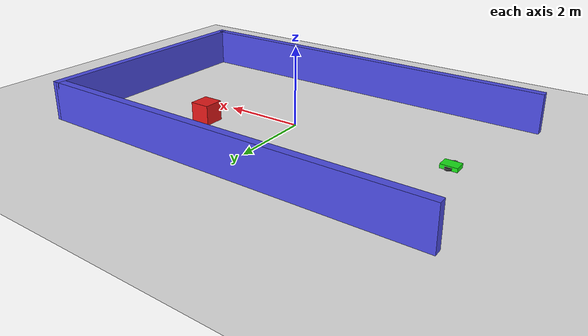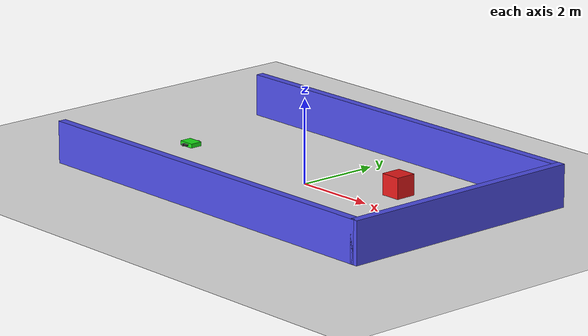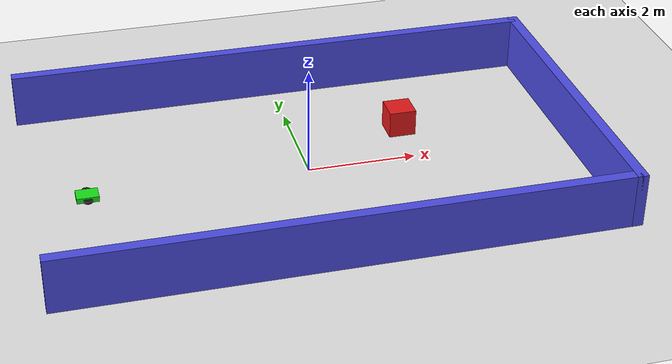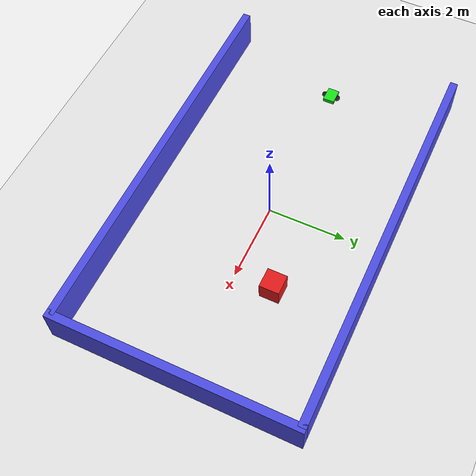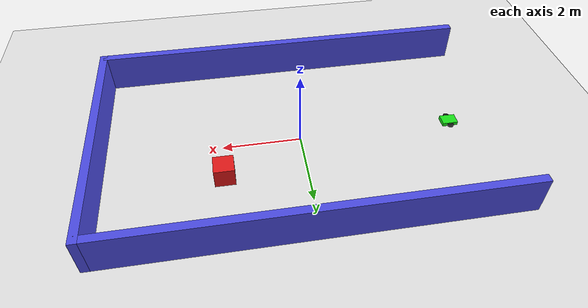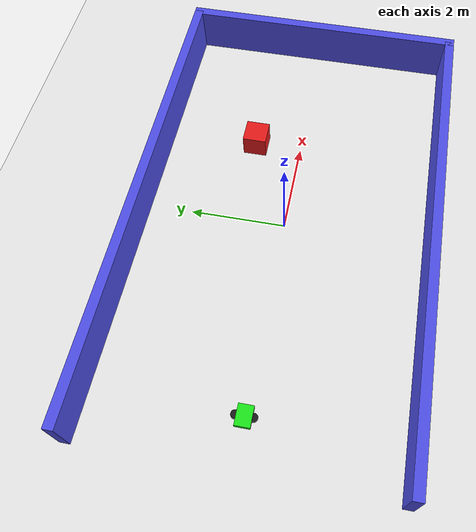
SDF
<?xml version="1.0" ?>
<sdf version="1.8">
  <world name="corridor">
    <plugin filename="gz-sim-physics-system" name="gz::sim::systems::Physics"/>
    <plugin filename="gz-sim-scene-broadcaster-system" name="gz::sim::systems::SceneBroadcaster"/>
    <plugin filename="gz-sim-user-commands-system" name="gz::sim::systems::UserCommands"/>
    <plugin filename="gz-sim-sensors-system" name="gz::sim::systems::Sensors">
      <render_engine>ogre</render_engine>
    </plugin>
    <scene>
      <ambient>1.0 1.0 1.0 1.0</ambient>
      <background>0.5 0.7 0.9 1.0</background>
      <shadows>false</shadows>
    </scene>
    <light type="directional" name="sun">
      <cast_shadows>false</cast_shadows>
      <pose>0 0 10 0 0 0</pose>
      <diffuse>1.0 1.0 1.0 1</diffuse>
      <specular>0.5 0.5 0.5 1</specular>
      <direction>0 0 -1</direction>
    </light>
    <model name="ground_plane">
      <static>true</static>
      <link name="link">
        <collision name="collision">
          <geometry><plane><normal>0 0 1</normal><size>20 20</size></plane></geometry>
        </collision>
        <visual name="visual">
          <geometry><plane><normal>0 0 1</normal><size>20 20</size></plane></geometry>
          <material><ambient>0.9 0.9 0.9 1</ambient><diffuse>0.9 0.9 0.9 1</diffuse></material>
        </visual>
      </link>
    </model>
    <model name="wall_left">
      <static>true</static>
      <pose>0 -3 0.5 0 0 0</pose>
      <link name="link">
        <collision name="collision">
          <geometry><box><size>10 0.2 1</size></box></geometry>
        </collision>
        <visual name="visual">
          <geometry><box><size>10 0.2 1</size></box></geometry>
          <material><ambient>0.3 0.3 0.9 1</ambient><diffuse>0.3 0.3 0.9 1</diffuse></material>
        </visual>
      </link>
    </model>
    <model name="wall_right">
      <static>true</static>
      <pose>0 3 0.5 0 0 0</pose>
      <link name="link">
        <collision name="collision">
          <geometry><box><size>10 0.2 1</size></box></geometry>
        </collision>
        <visual name="visual">
          <geometry><box><size>10 0.2 1</size></box></geometry>
          <material><ambient>0.3 0.3 0.9 1</ambient><diffuse>0.3 0.3 0.9 1</diffuse></material>
        </visual>
      </link>
    </model>
    <model name="wall_end">
      <static>true</static>
      <pose>5 0 0.5 0 0 0</pose>
      <link name="link">
        <collision name="collision">
          <geometry><box><size>0.2 6.2 1</size></box></geometry>
        </collision>
        <visual name="visual">
          <geometry><box><size>0.2 6.2 1</size></box></geometry>
          <material><ambient>0.3 0.3 0.9 1</ambient><diffuse>0.3 0.3 0.9 1</diffuse></material>
        </visual>
      </link>
    </model>
    <model name="obstacle_1">
      <static>true</static>
      <pose>2 1 0.25 0 0 0</pose>
      <link name="link">
        <collision name="collision">
          <geometry><box><size>0.5 0.5 0.5</size></box></geometry>
        </collision>
        <visual name="visual">
          <geometry><box><size>0.5 0.5 0.5</size></box></geometry>
          <material><ambient>0.9 0.1 0.1 1</ambient><diffuse>0.9 0.1 0.1 1</diffuse></material>
        </visual>
      </link>
    </model>
    <model name="robot" canonical_link="chassis">
      <pose>-4 0 0.08 0 0 0</pose>
      <link name="chassis">
        <inertial><mass>1.0</mass></inertial>
        <visual name="visual">
          <geometry><box><size>0.4 0.3 0.1</size></box></geometry>
          <material><ambient>0.1 0.9 0.1 1</ambient><diffuse>0.1 0.9 0.1 1</diffuse></material>
        </visual>
        <collision name="collision">
          <geometry><box><size>0.4 0.3 0.1</size></box></geometry>
        </collision>
        <sensor name="camera" type="camera">
          <pose>0.21 0 0.05 0 0 0</pose>
          <camera>
            <horizontal_fov>1.047</horizontal_fov>
            <image><width>320</width><height>240</height><format>R8G8B8</format></image>
            <clip><near>0.1</near><far>20</far></clip>
          </camera>
          <always_on>true</always_on>
          <update_rate>10</update_rate>
          <visualize>true</visualize>
          <topic>/camera/image</topic>
        </sensor>
      </link>
      <link name="left_wheel">
        <pose>0 0.17 0 0 0 0</pose>
        <inertial><mass>0.1</mass></inertial>
        <visual name="visual">
          <geometry><cylinder><radius>0.08</radius><length>0.04</length></cylinder></geometry>
          <material><ambient>0.1 0.1 0.1 1</ambient><diffuse>0.1 0.1 0.1 1</diffuse></material>
        </visual>
        <collision name="collision">
          <geometry><cylinder><radius>0.08</radius><length>0.04</length></cylinder></geometry>
        </collision>
      </link>
      <link name="right_wheel">
        <pose>0 -0.17 0 0 0 0</pose>
        <inertial><mass>0.1</mass></inertial>
        <visual name="visual">
          <geometry><cylinder><radius>0.08</radius><length>0.04</length></cylinder></geometry>
          <material><ambient>0.1 0.1 0.1 1</ambient><diffuse>0.1 0.1 0.1 1</diffuse></material>
        </visual>
        <collision name="collision">
          <geometry><cylinder><radius>0.08</radius><length>0.04</length></cylinder></geometry>
        </collision>
      </link>
      <joint name="left_wheel_joint" type="revolute">
        <parent>chassis</parent><child>left_wheel</child>
        <axis><xyz>0 1 0</xyz></axis>
      </joint>
      <joint name="right_wheel_joint" type="revolute">
        <parent>chassis</parent><child>right_wheel</child>
        <axis><xyz>0 1 0</xyz></axis>
      </joint>
      <plugin filename="gz-sim-diff-drive-system" name="gz::sim::systems::DiffDrive">
        <left_joint>left_wheel_joint</left_joint>
        <right_joint>right_wheel_joint</right_joint>
        <wheel_separation>0.34</wheel_separation>
        <wheel_radius>0.08</wheel_radius>
        <topic>/cmd_vel</topic>
      </plugin>
    </model>
  </world>
</sdf>
